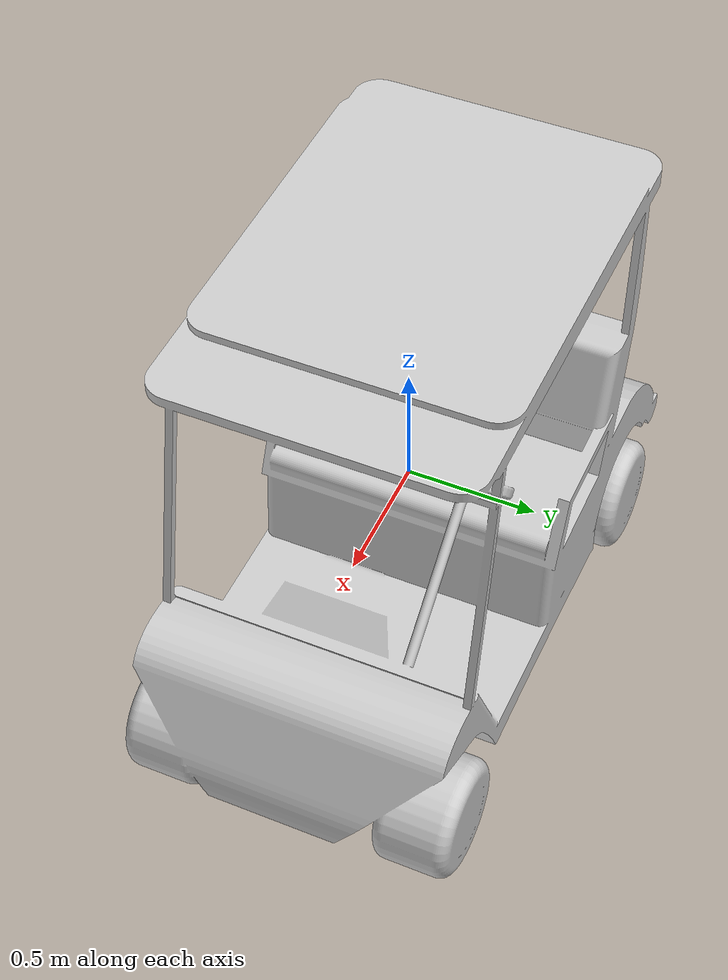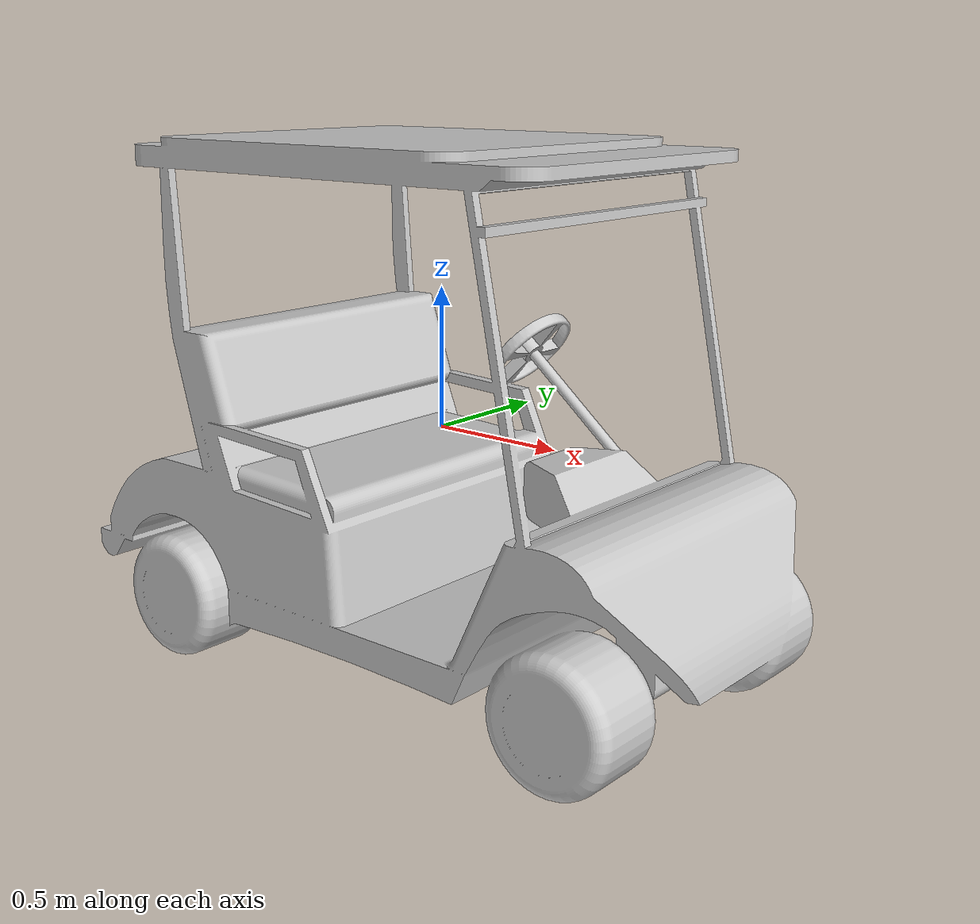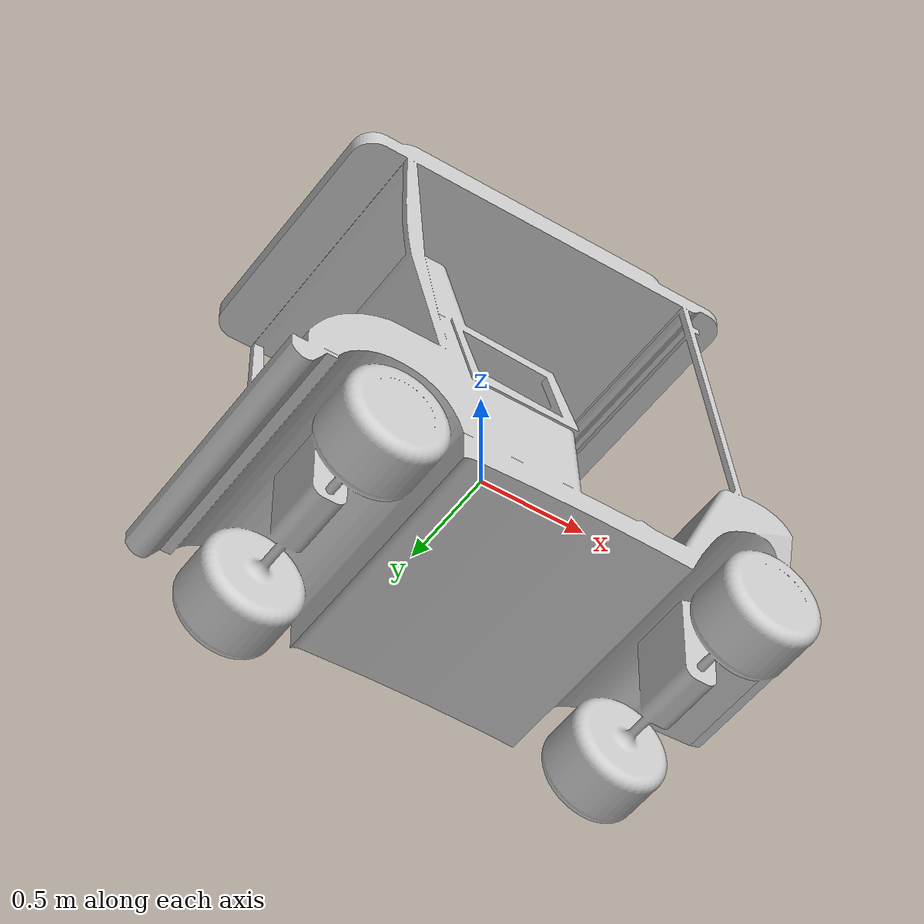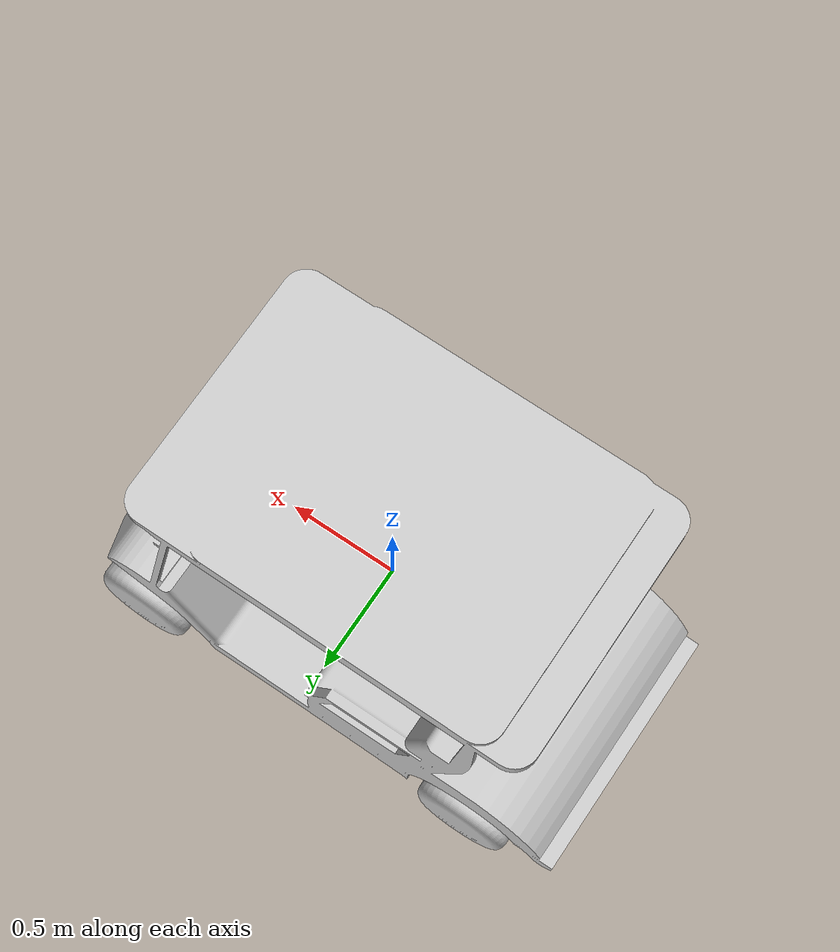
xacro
<?xml version ="1.0" ?>

<robot name="cart_standalone" xmlns:xacro="http://www.ros.org/wiki/xacro">
    <link name="base_link">
        <visual>
            <origin rpy="1.570796 0 0" xyz="-1.2375 0.65 -0.89"/>
            <geometry>
                <mesh filename="package://cart_sim/meshes/golfcar.dae"/>
            </geometry>
        </visual>
        <collision name="collision">
          <geometry>
            <box size="2.38 1.2 1.78"/>
          </geometry>
        </collision>
        <inertial>
          <mass value="300"/>
          <inertia ixx="10.0" ixy="0.0" ixz="0.0" iyy="10.0" iyz="0.0" izz="10.0"/>
        </inertial>
    </link>
</robot>
